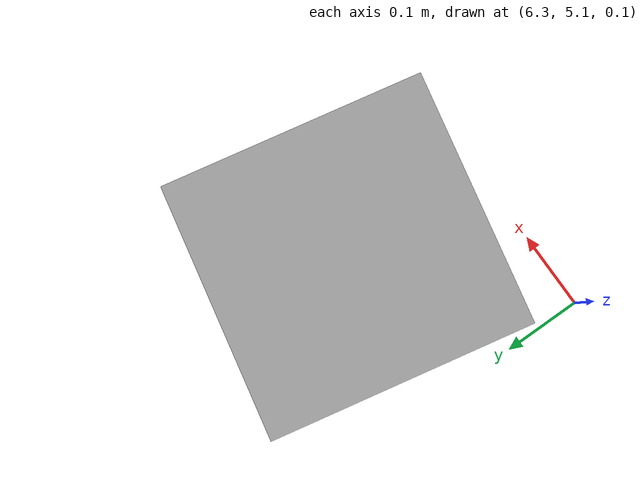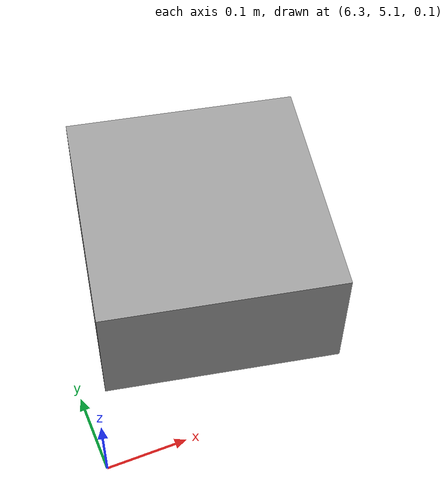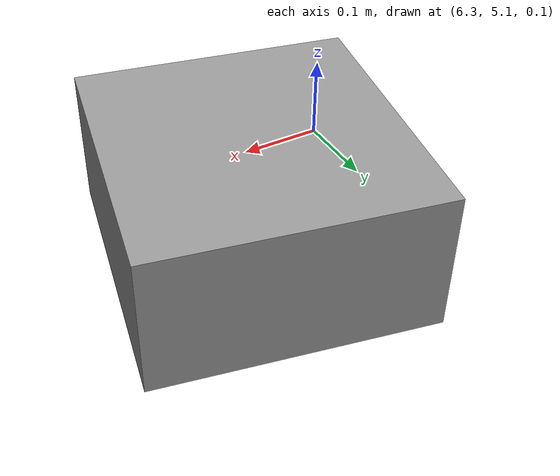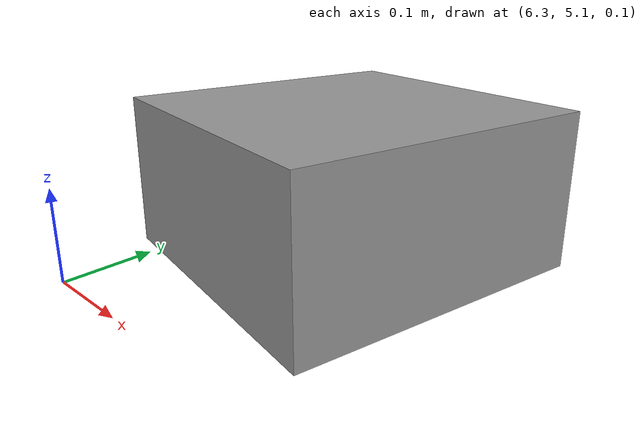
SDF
<sdf version="1.7">
 <world name="default">
  <model name="unit_box">
   <pose>6.5 5.3 0.206447 -0 -0 -0.2</pose>
   <link name="link">
    <inertial>
     <mass>10</mass>
     <inertia><ixx>1.66667</ixx><ixy>0</ixy><ixz>0</ixz><iyy>1.66667</iyy><iyz>0</iyz><izz>1.66667</izz></inertia>
    </inertial>
    <collision name="collision"><geometry><box><size>0.290602 0.300266 0.15</size></box></geometry></collision>
    <visual name="visual">
     <geometry><box><size>0.290602 0.300266 0.15</size></box></geometry>
     <material>
      <script><name>Gazebo/Grey</name><uri>file://media/materials/scripts/gazebo.material</uri></script>
     </material>
    </visual>
   </link>
  </model>
 </world>
</sdf>
